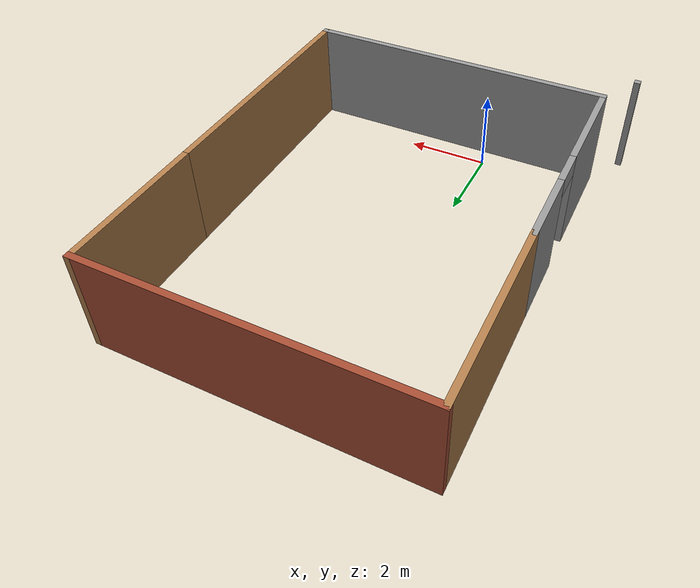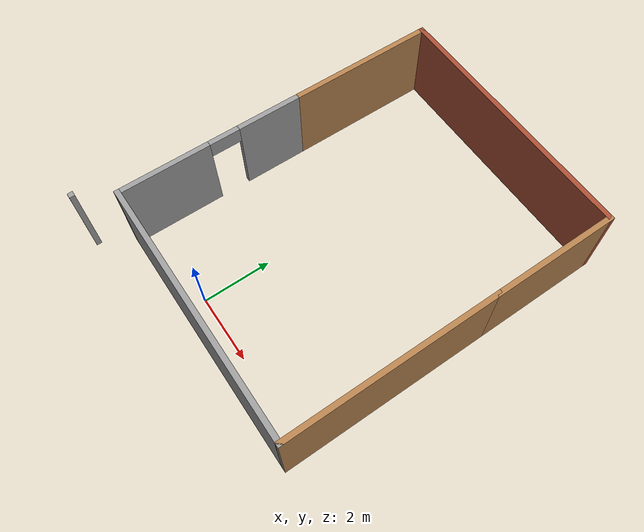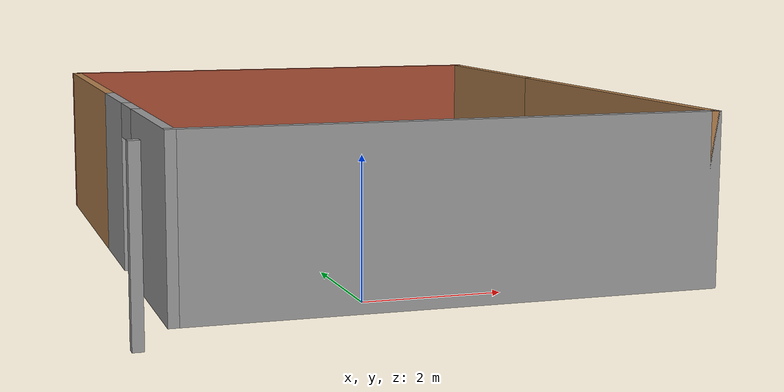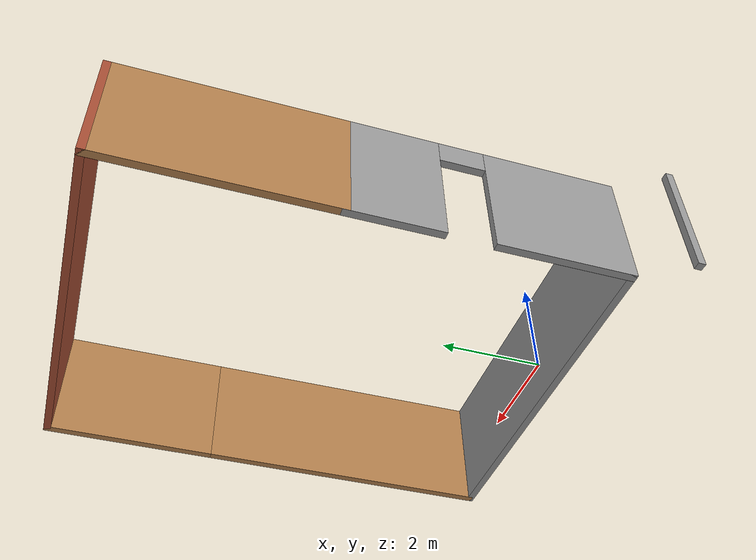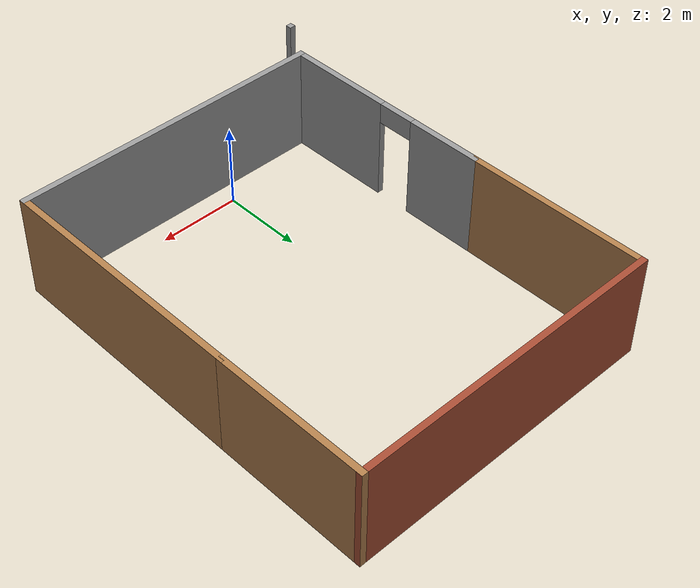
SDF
<?xml version='1.0'?>
<sdf version='1.7'>
  <model name='building_edit'>
    <pose>0.828128 3.77676 0 0 -0 0</pose>
    <link name='Wall_10'>
      <collision name='Wall_10_Collision'>
        <geometry>
          <box>
            <size>4.5 0.15 2.5</size>
          </box>
        </geometry>
        <pose>0 0 1.25 0 -0 0</pose>
      </collision>
      <visual name='Wall_10_Visual'>
        <pose>0 0 1.25 0 -0 0</pose>
        <geometry>
          <box>
            <size>4.5 0.15 2.5</size>
          </box>
        </geometry>
        <material>
          <script>
            <uri>file://media/materials/scripts/gazebo.material</uri>
            <name>Gazebo/Wood</name>
          </script>
          <ambient>1 1 1 1</ambient>
        </material>
        <meta>
          <layer>0</layer>
        </meta>
      </visual>
      <pose>-3.50187 3.17176 0 0 -0 -1.5708</pose>
    </link>
    <link name='Wall_3'>
      <collision name='Wall_3_Collision'>
        <geometry>
          <box>
            <size>0.15 0.15 2.5</size>
          </box>
        </geometry>
        <pose>0 0 1.25 0 -0 0</pose>
      </collision>
      <visual name='Wall_3_Visual'>
        <pose>0 0 1.25 0 -0 0</pose>
        <geometry>
          <box>
            <size>0.15 0.15 2.5</size>
          </box>
        </geometry>
        <material>
          <script>
            <uri>file://media/materials/scripts/gazebo.material</uri>
            <name>Gazebo/Grey</name>
          </script>
          <ambient>1 1 1 1</ambient>
        </material>
        <meta>
          <layer>0</layer>
        </meta>
      </visual>
      <pose>-4.09813 -5.34676 0 0 -0 0</pose>
    </link>
    <link name='Wall_5'>
      <pose>-3.50187 -1.67824 0 0 -0 -1.5708</pose>
      <visual name='Wall_5_Visual_0'>
        <pose>-1.81055 0 1.25 0 -0 0</pose>
        <geometry>
          <box>
            <size>1.87889 0.15 2.5</size>
          </box>
        </geometry>
        <material>
          <script>
            <uri>file://media/materials/scripts/gazebo.material</uri>
            <name>Gazebo/Grey</name>
          </script>
          <ambient>1 1 1 1</ambient>
        </material>
        <meta>
          <layer>0</layer>
        </meta>
      </visual>
      <collision name='Wall_5_Collision_0'>
        <geometry>
          <box>
            <size>1.87889 0.15 2.5</size>
          </box>
        </geometry>
        <pose>-1.81055 0 1.25 0 -0 0</pose>
      </collision>
      <visual name='Wall_5_Visual_1'>
        <pose>1.38945 0 1.25 0 -0 0</pose>
        <geometry>
          <box>
            <size>2.72111 0.15 2.5</size>
          </box>
        </geometry>
        <material>
          <script>
            <uri>file://media/materials/scripts/gazebo.material</uri>
            <name>Gazebo/Grey</name>
          </script>
          <ambient>1 1 1 1</ambient>
        </material>
        <meta>
          <layer>0</layer>
        </meta>
      </visual>
      <collision name='Wall_5_Collision_1'>
        <geometry>
          <box>
            <size>2.72111 0.15 2.5</size>
          </box>
        </geometry>
        <pose>1.38945 0 1.25 0 -0 0</pose>
      </collision>
      <visual name='Wall_5_Visual_2'>
        <pose>-0.421105 0 2.25 0 -0 0</pose>
        <geometry>
          <box>
            <size>0.9 0.15 0.5</size>
          </box>
        </geometry>
        <material>
          <script>
            <uri>file://media/materials/scripts/gazebo.material</uri>
            <name>Gazebo/Grey</name>
          </script>
          <ambient>1 1 1 1</ambient>
        </material>
        <meta>
          <layer>0</layer>
        </meta>
      </visual>
      <collision name='Wall_5_Collision_2'>
        <geometry>
          <box>
            <size>0.9 0.15 0.5</size>
          </box>
        </geometry>
        <pose>-0.421105 0 2.25 0 -0 0</pose>
      </collision>
    </link>
    <link name='Wall_6'>
      <collision name='Wall_6_Collision'>
        <geometry>
          <box>
            <size>7.75 0.15 2.5</size>
          </box>
        </geometry>
        <pose>0 0 1.25 0 -0 0</pose>
      </collision>
      <visual name='Wall_6_Visual'>
        <pose>0 0 1.25 0 -0 0</pose>
        <geometry>
          <box>
            <size>7.75 0.15 2.5</size>
          </box>
        </geometry>
        <material>
          <script>
            <uri>file://media/materials/scripts/gazebo.material</uri>
            <name>Gazebo/Grey</name>
          </script>
          <ambient>1 1 1 1</ambient>
        </material>
        <meta>
          <layer>0</layer>
        </meta>
      </visual>
      <pose>0.298128 -4.35324 0 0 -0 0</pose>
    </link>
    <link name='Wall_7'>
      <collision name='Wall_7_Collision'>
        <geometry>
          <box>
            <size>6.25 0.15 2.5</size>
          </box>
        </geometry>
        <pose>0 0 1.25 0 -0 0</pose>
      </collision>
      <visual name='Wall_7_Visual'>
        <pose>0 0 1.25 0 -0 0</pose>
        <geometry>
          <box>
            <size>6.25 0.15 2.5</size>
          </box>
        </geometry>
        <material>
          <script>
            <uri>file://media/materials/scripts/gazebo.material</uri>
            <name>Gazebo/Wood</name>
          </script>
          <ambient>1 1 1 1</ambient>
        </material>
        <meta>
          <layer>0</layer>
        </meta>
      </visual>
      <pose>4.09813 -1.30324 0 0 -0 1.5708</pose>
    </link>
    <link name='Wall_8'>
      <collision name='Wall_8_Collision'>
        <geometry>
          <box>
            <size>3.75 0.15 2.5</size>
          </box>
        </geometry>
        <pose>0 0 1.25 0 -0 0</pose>
      </collision>
      <visual name='Wall_8_Visual'>
        <pose>0 0 1.25 0 -0 0</pose>
        <geometry>
          <box>
            <size>3.75 0.15 2.5</size>
          </box>
        </geometry>
        <material>
          <script>
            <uri>file://media/materials/scripts/gazebo.material</uri>
            <name>Gazebo/Wood</name>
          </script>
          <ambient>1 1 1 1</ambient>
        </material>
        <meta>
          <layer>0</layer>
        </meta>
      </visual>
      <pose>4.09813 3.54676 0 0 -0 1.5708</pose>
    </link>
    <link name='Wall_9'>
      <collision name='Wall_9_Collision'>
        <geometry>
          <box>
            <size>7.75 0.15 2.5</size>
          </box>
        </geometry>
        <pose>0 0 1.25 0 -0 0</pose>
      </collision>
      <visual name='Wall_9_Visual'>
        <pose>0 0 1.25 0 -0 0</pose>
        <geometry>
          <box>
            <size>7.75 0.15 2.5</size>
          </box>
        </geometry>
        <material>
          <script>
            <uri>file://media/materials/scripts/gazebo.material</uri>
            <name>Gazebo/Bricks</name>
          </script>
          <ambient>1 1 1 1</ambient>
        </material>
        <meta>
          <layer>0</layer>
        </meta>
      </visual>
      <pose>0.298128 5.34676 0 0 -0 3.14159</pose>
    </link>
    <static>1</static>
  </model>
</sdf>
